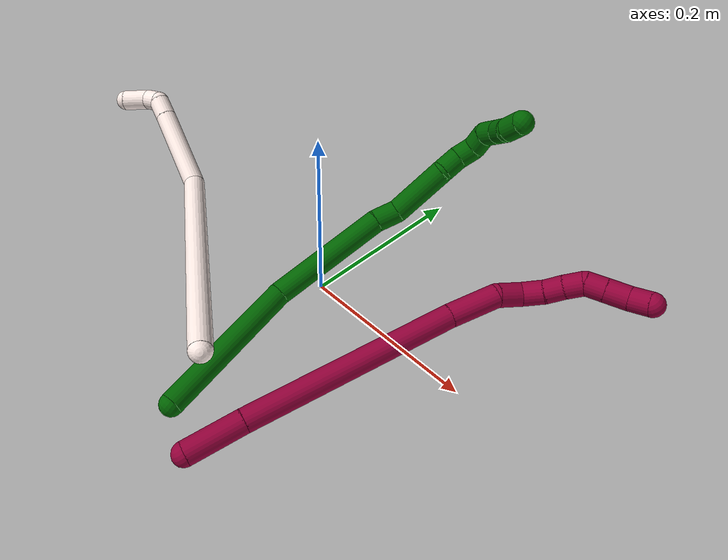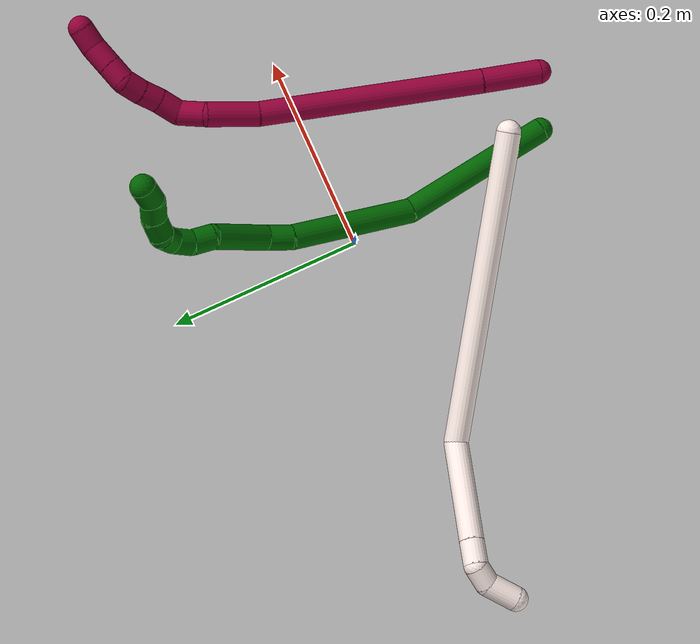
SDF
<sdf version="1.7">
 <world name="default">
  <model name="6">
   <static>0</static>
   <link name="6">
    <collision name="collision-cylinder-e_1_1_4">
     <pose>0.01271 0.038841 0.068068 -0.518536 0.160773 -0.042729</pose>
     <geometry><cylinder><radius>0.0125</radius><length>0.158789</length></cylinder></geometry>
     <surface>
      <friction><ode><mu>1.16</mu><mu2>1.16</mu2><slip1>0</slip1><slip2>0</slip2></ode></friction>
      <contact><ode><kp>1e+06</kp><kd>1</kd><max_vel>0</max_vel><min_depth>0.001</min_depth></ode></contact>
     </surface>
    </collision>
    <visual name="visual-cylinder-e_1_1_4">
     <pose>0.01271 0.038841 0.068068 -0.518536 0.160773 -0.042729</pose>
     <geometry><cylinder><radius>0.0125</radius><length>0.158789</length></cylinder></geometry>
     <material><ambient>0 0.392157 0.003922 1</ambient></material>
    </visual>
    <collision name="collision-cylinder-e_2_4_5">
     <pose>0.042735 0.088043 0.19715 -0.168206 0.272822 -0.023142</pose>
     <geometry><cylinder><radius>0.0125</radius><length>0.128527</length></cylinder></geometry>
     <surface>
      <friction><ode><mu>1.16</mu><mu2>1.16</mu2><slip1>0</slip1><slip2>0</slip2></ode></friction>
      <contact><ode><kp>1e+06</kp><kd>1</kd><max_vel>0</max_vel><min_depth>0.001</min_depth></ode></contact>
     </surface>
    </collision>
    <visual name="visual-cylinder-e_2_4_5">
     <pose>0.042735 0.088043 0.19715 -0.168206 0.272822 -0.023142</pose>
     <geometry><cylinder><radius>0.0125</radius><length>0.128527</length></cylinder></geometry>
     <material><ambient>0 0.392157 0.003922 1</ambient></material>
    </visual>
    <collision name="collision-cylinder-e_3_5_6">
     <pose>0.065923 0.099084 0.269718 -0.058797 0.469496 -0.014066</pose>
     <geometry><cylinder><radius>0.0125</radius><length>0.025959</length></cylinder></geometry>
     <surface>
      <friction><ode><mu>1.16</mu><mu2>1.16</mu2><slip1>0</slip1><slip2>0</slip2></ode></friction>
      <contact><ode><kp>1e+06</kp><kd>1</kd><max_vel>0</max_vel><min_depth>0.001</min_depth></ode></contact>
     </surface>
    </collision>
    <visual name="visual-cylinder-e_3_5_6">
     <pose>0.065923 0.099084 0.269718 -0.058797 0.469496 -0.014066</pose>
     <geometry><cylinder><radius>0.0125</radius><length>0.025959</length></cylinder></geometry>
     <material><ambient>0 0.392157 0.003922 1</ambient></material>
    </visual>
    <collision name="collision-cylinder-e_4_6_7">
     <pose>0.075745 0.093297 0.312313 0.205409 0.12391 0.012787</pose>
     <geometry><cylinder><radius>0.0125</radius><length>0.063902</length></cylinder></geometry>
     <surface>
      <friction><ode><mu>1.16</mu><mu2>1.16</mu2><slip1>0</slip1><slip2>0</slip2></ode></friction>
      <contact><ode><kp>1e+06</kp><kd>1</kd><max_vel>0</max_vel><min_depth>0.001</min_depth></ode></contact>
     </surface>
    </collision>
    <visual name="visual-cylinder-e_4_6_7">
     <pose>0.075745 0.093297 0.312313 0.205409 0.12391 0.012787</pose>
     <geometry><cylinder><radius>0.0125</radius><length>0.063902</length></cylinder></geometry>
     <material><ambient>0 0.392157 0.003922 1</ambient></material>
    </visual>
    <collision name="collision-cylinder-e_5_7_8">
     <pose>0.082041 0.088856 0.354168 -0.185209 0.210146 -0.019588</pose>
     <geometry><cylinder><radius>0.0125</radius><length>0.022502</length></cylinder></geometry>
     <surface>
      <friction><ode><mu>1.16</mu><mu2>1.16</mu2><slip1>0</slip1><slip2>0</slip2></ode></friction>
      <contact><ode><kp>1e+06</kp><kd>1</kd><max_vel>0</max_vel><min_depth>0.001</min_depth></ode></contact>
     </surface>
    </collision>
    <visual name="visual-cylinder-e_5_7_8">
     <pose>0.082041 0.088856 0.354168 -0.185209 0.210146 -0.019588</pose>
     <geometry><cylinder><radius>0.0125</radius><length>0.022502</length></cylinder></geometry>
     <material><ambient>0 0.392157 0.003922 1</ambient></material>
    </visual>
    <collision name="collision-cylinder-e_6_8_9">
     <pose>0.087354 0.089012 0.374412 0.195863 0.299372 0.029632</pose>
     <geometry><cylinder><radius>0.0125</radius><length>0.020119</length></cylinder></geometry>
     <surface>
      <friction><ode><mu>1.16</mu><mu2>1.16</mu2><slip1>0</slip1><slip2>0</slip2></ode></friction>
      <contact><ode><kp>1e+06</kp><kd>1</kd><max_vel>0</max_vel><min_depth>0.001</min_depth></ode></contact>
     </surface>
    </collision>
    <visual name="visual-cylinder-e_6_8_9">
     <pose>0.087354 0.089012 0.374412 0.195863 0.299372 0.029632</pose>
     <geometry><cylinder><radius>0.0125</radius><length>0.020119</length></cylinder></geometry>
     <material><ambient>0 0.392157 0.003922 1</ambient></material>
    </visual>
    <collision name="collision-cylinder-e_7_9_10">
     <pose>0.088882 0.081432 0.391967 0.612449 -0.143872 -0.045559</pose>
     <geometry><cylinder><radius>0.0125</radius><length>0.02007</length></cylinder></geometry>
     <surface>
      <friction><ode><mu>1.16</mu><mu2>1.16</mu2><slip1>0</slip1><slip2>0</slip2></ode></friction>
      <contact><ode><kp>1e+06</kp><kd>1</kd><max_vel>0</max_vel><min_depth>0.001</min_depth></ode></contact>
     </surface>
    </collision>
    <visual name="visual-cylinder-e_7_9_10">
     <pose>0.088882 0.081432 0.391967 0.612449 -0.143872 -0.045559</pose>
     <geometry><cylinder><radius>0.0125</radius><length>0.02007</length></cylinder></geometry>
     <material><ambient>0 0.392157 0.003922 1</ambient></material>
    </visual>
    <collision name="collision-cylinder-e_8_10_11">
     <pose>0.090187 0.066964 0.40411 1.14079 0.277417 0.178644</pose>
     <geometry><cylinder><radius>0.0125</radius><length>0.020037</length></cylinder></geometry>
     <surface>
      <friction><ode><mu>1.16</mu><mu2>1.16</mu2><slip1>0</slip1><slip2>0</slip2></ode></friction>
      <contact><ode><kp>1e+06</kp><kd>1</kd><max_vel>0</max_vel><min_depth>0.001</min_depth></ode></contact>
     </surface>
    </collision>
    <visual name="visual-cylinder-e_8_10_11">
     <pose>0.090187 0.066964 0.40411 1.14079 0.277417 0.178644</pose>
     <geometry><cylinder><radius>0.0125</radius><length>0.020037</length></cylinder></geometry>
     <material><ambient>0 0.392157 0.003922 1</ambient></material>
    </visual>
    <collision name="collision-cylinder-e_9_11_12">
     <pose>0.093608 0.048386 0.410093 1.37315 0.067454 0.055292</pose>
     <geometry><cylinder><radius>0.0125</radius><length>0.020076</length></cylinder></geometry>
     <surface>
      <friction><ode><mu>1.16</mu><mu2>1.16</mu2><slip1>0</slip1><slip2>0</slip2></ode></friction>
      <contact><ode><kp>1e+06</kp><kd>1</kd><max_vel>0</max_vel><min_depth>0.001</min_depth></ode></contact>
     </surface>
    </collision>
    <visual name="visual-cylinder-e_9_11_12">
     <pose>0.093608 0.048386 0.410093 1.37315 0.067454 0.055292</pose>
     <geometry><cylinder><radius>0.0125</radius><length>0.020076</length></cylinder></geometry>
     <material><ambient>0 0.392157 0.003922 1</ambient></material>
    </visual>
    <collision name="collision-cylinder-e_10_12_2">
     <pose>0.095757 0.030458 0.417742 0.95953 0.147677 0.07694</pose>
     <geometry><cylinder><radius>0.0125</radius><length>0.020018</length></cylinder></geometry>
     <surface>
      <friction><ode><mu>1.16</mu><mu2>1.16</mu2><slip1>0</slip1><slip2>0</slip2></ode></friction>
      <contact><ode><kp>1e+06</kp><kd>1</kd><max_vel>0</max_vel><min_depth>0.001</min_depth></ode></contact>
     </surface>
    </collision>
    <visual name="visual-cylinder-e_10_12_2">
     <pose>0.095757 0.030458 0.417742 0.95953 0.147677 0.07694</pose>
     <geometry><cylinder><radius>0.0125</radius><length>0.020018</length></cylinder></geometry>
     <material><ambient>0 0.392157 0.003922 1</ambient></material>
    </visual>
    <collision name="collision-sphere-2">
     <pose>0.09723 0.022351 0.423423 0 -0 0</pose>
     <geometry><sphere><radius>0.0125</radius></sphere></geometry>
     <surface>
      <friction><ode><mu>1.16</mu><mu2>1.16</mu2><slip1>0</slip1><slip2>0</slip2></ode></friction>
      <contact><ode><kp>1e+06</kp><kd>1</kd><max_vel>0</max_vel><min_depth>0.001</min_depth></ode></contact>
     </surface>
    </collision>
    <visual name="visual-sphere-2">
     <pose>0.09723 0.022351 0.423423 0 -0 0</pose>
     <geometry><sphere><radius>0.0125</radius></sphere></geometry>
     <material><ambient>0 0.392157 0.003922 1</ambient></material>
    </visual>
    <collision name="collision-sphere-12">
     <pose>0.094284 0.038566 0.41206 0 -0 0</pose>
     <geometry><sphere><radius>0.0125</radius></sphere></geometry>
     <surface>
      <friction><ode><mu>1.16</mu><mu2>1.16</mu2><slip1>0</slip1><slip2>0</slip2></ode></friction>
      <contact><ode><kp>1e+06</kp><kd>1</kd><max_vel>0</max_vel><min_depth>0.001</min_depth></ode></contact>
     </surface>
    </collision>
    <visual name="visual-sphere-12">
     <pose>0.094284 0.038566 0.41206 0 -0 0</pose>
     <geometry><sphere><radius>0.0125</radius></sphere></geometry>
     <material><ambient>0 0.392157 0.003922 1</ambient></material>
    </visual>
    <collision name="collision-sphere-11">
     <pose>0.092931 0.058206 0.408127 0 -0 0</pose>
     <geometry><sphere><radius>0.0125</radius></sphere></geometry>
     <surface>
      <friction><ode><mu>1.16</mu><mu2>1.16</mu2><slip1>0</slip1><slip2>0</slip2></ode></friction>
      <contact><ode><kp>1e+06</kp><kd>1</kd><max_vel>0</max_vel><min_depth>0.001</min_depth></ode></contact>
     </surface>
    </collision>
    <visual name="visual-sphere-11">
     <pose>0.092931 0.058206 0.408127 0 -0 0</pose>
     <geometry><sphere><radius>0.0125</radius></sphere></geometry>
     <material><ambient>0 0.392157 0.003922 1</ambient></material>
    </visual>
    <collision name="collision-sphere-10">
     <pose>0.087444 0.075723 0.400093 0 -0 0</pose>
     <geometry><sphere><radius>0.0125</radius></sphere></geometry>
     <surface>
      <friction><ode><mu>1.16</mu><mu2>1.16</mu2><slip1>0</slip1><slip2>0</slip2></ode></friction>
      <contact><ode><kp>1e+06</kp><kd>1</kd><max_vel>0</max_vel><min_depth>0.001</min_depth></ode></contact>
     </surface>
    </collision>
    <visual name="visual-sphere-10">
     <pose>0.087444 0.075723 0.400093 0 -0 0</pose>
     <geometry><sphere><radius>0.0125</radius></sphere></geometry>
     <material><ambient>0 0.392157 0.003922 1</ambient></material>
    </visual>
    <collision name="collision-sphere-9">
     <pose>0.090321 0.087141 0.38384 0 -0 0</pose>
     <geometry><sphere><radius>0.0125</radius></sphere></geometry>
     <surface>
      <friction><ode><mu>1.16</mu><mu2>1.16</mu2><slip1>0</slip1><slip2>0</slip2></ode></friction>
      <contact><ode><kp>1e+06</kp><kd>1</kd><max_vel>0</max_vel><min_depth>0.001</min_depth></ode></contact>
     </surface>
    </collision>
    <visual name="visual-sphere-9">
     <pose>0.090321 0.087141 0.38384 0 -0 0</pose>
     <geometry><sphere><radius>0.0125</radius></sphere></geometry>
     <material><ambient>0 0.392157 0.003922 1</ambient></material>
    </visual>
    <collision name="collision-sphere-4">
     <pose>0.025419 0.077682 0.136137 0 -0 0</pose>
     <geometry><sphere><radius>0.0125</radius></sphere></geometry>
     <surface>
      <friction><ode><mu>1.16</mu><mu2>1.16</mu2><slip1>0</slip1><slip2>0</slip2></ode></friction>
      <contact><ode><kp>1e+06</kp><kd>1</kd><max_vel>0</max_vel><min_depth>0.001</min_depth></ode></contact>
     </surface>
    </collision>
    <visual name="visual-sphere-4">
     <pose>0.025419 0.077682 0.136137 0 -0 0</pose>
     <geometry><sphere><radius>0.0125</radius></sphere></geometry>
     <material><ambient>0 0.392157 0.003922 1</ambient></material>
    </visual>
    <collision name="collision-sphere-1">
     <geometry><sphere><radius>0.0125</radius></sphere></geometry>
     <surface>
      <friction><ode><mu>1.16</mu><mu2>1.16</mu2><slip1>0</slip1><slip2>0</slip2></ode></friction>
      <contact><ode><kp>1e+06</kp><kd>1</kd><max_vel>0</max_vel><min_depth>0.001</min_depth></ode></contact>
     </surface>
    </collision>
    <visual name="visual-sphere-1">
     <geometry><sphere><radius>0.0125</radius></sphere></geometry>
     <material><ambient>0 0.392157 0.003922 1</ambient></material>
    </visual>
    <collision name="collision-sphere-8">
     <pose>0.084388 0.090883 0.364983 0 -0 0</pose>
     <geometry><sphere><radius>0.0125</radius></sphere></geometry>
     <surface>
      <friction><ode><mu>1.16</mu><mu2>1.16</mu2><slip1>0</slip1><slip2>0</slip2></ode></friction>
      <contact><ode><kp>1e+06</kp><kd>1</kd><max_vel>0</max_vel><min_depth>0.001</min_depth></ode></contact>
     </surface>
    </collision>
    <visual name="visual-sphere-8">
     <pose>0.084388 0.090883 0.364983 0 -0 0</pose>
     <geometry><sphere><radius>0.0125</radius></sphere></geometry>
     <material><ambient>0 0.392157 0.003922 1</ambient></material>
    </visual>
    <collision name="collision-sphere-5">
     <pose>0.060051 0.098404 0.258163 0 -0 0</pose>
     <geometry><sphere><radius>0.0125</radius></sphere></geometry>
     <surface>
      <friction><ode><mu>1.16</mu><mu2>1.16</mu2><slip1>0</slip1><slip2>0</slip2></ode></friction>
      <contact><ode><kp>1e+06</kp><kd>1</kd><max_vel>0</max_vel><min_depth>0.001</min_depth></ode></contact>
     </surface>
    </collision>
    <visual name="visual-sphere-5">
     <pose>0.060051 0.098404 0.258163 0 -0 0</pose>
     <geometry><sphere><radius>0.0125</radius></sphere></geometry>
     <material><ambient>0 0.392157 0.003922 1</ambient></material>
    </visual>
    <collision name="collision-sphere-6">
     <pose>0.071796 0.099764 0.281274 0 -0 0</pose>
     <geometry><sphere><radius>0.0125</radius></sphere></geometry>
     <surface>
      <friction><ode><mu>1.16</mu><mu2>1.16</mu2><slip1>0</slip1><slip2>0</slip2></ode></friction>
      <contact><ode><kp>1e+06</kp><kd>1</kd><max_vel>0</max_vel><min_depth>0.001</min_depth></ode></contact>
     </surface>
    </collision>
    <visual name="visual-sphere-6">
     <pose>0.071796 0.099764 0.281274 0 -0 0</pose>
     <geometry><sphere><radius>0.0125</radius></sphere></geometry>
     <material><ambient>0 0.392157 0.003922 1</ambient></material>
    </visual>
    <collision name="collision-sphere-7">
     <pose>0.079694 0.08683 0.343353 0 -0 0</pose>
     <geometry><sphere><radius>0.0125</radius></sphere></geometry>
     <surface>
      <friction><ode><mu>1.16</mu><mu2>1.16</mu2><slip1>0</slip1><slip2>0</slip2></ode></friction>
      <contact><ode><kp>1e+06</kp><kd>1</kd><max_vel>0</max_vel><min_depth>0.001</min_depth></ode></contact>
     </surface>
    </collision>
    <visual name="visual-sphere-7">
     <pose>0.079694 0.08683 0.343353 0 -0 0</pose>
     <geometry><sphere><radius>0.0125</radius></sphere></geometry>
     <material><ambient>0 0.392157 0.003922 1</ambient></material>
    </visual>
    <inertial>
     <pose>0.050106 0.06873 0.222337 0 -0 0</pose>
     <mass>0.5</mass>
     <inertia>
      <ixx>0.000535</ixx>
      <ixy>0</ixy>
      <ixz>0</ixz>
      <iyy>0.000492</iyy>
      <iyz>0</iyz>
      <izz>-0.000262</izz>
     </inertia>
    </inertial>
   </link>
   <pose>0.026483 -0.218641 0.011508 -0.727911 0.591852 0.451123</pose>
  </model>
  <model name="8">
   <static>0</static>
   <link name="8">
    <collision name="collision-cylinder-e_1_1_4">
     <pose>0.002517 0.029208 -0.007932 -1.83598 0.082974 -0.10847</pose>
     <geometry><cylinder><radius>0.0125</radius><length>0.060741</length></cylinder></geometry>
     <surface>
      <friction><ode><mu>1.16</mu><mu2>1.16</mu2><slip1>0</slip1><slip2>0</slip2></ode></friction>
      <contact><ode><kp>1e+06</kp><kd>1</kd><max_vel>0</max_vel><min_depth>0.001</min_depth></ode></contact>
     </surface>
    </collision>
    <visual name="visual-cylinder-e_1_1_4">
     <pose>0.002517 0.029208 -0.007932 -1.83598 0.082974 -0.10847</pose>
     <geometry><cylinder><radius>0.0125</radius><length>0.060741</length></cylinder></geometry>
     <material><ambient>0.584314 0 0.227451 1</ambient></material>
    </visual>
    <collision name="collision-cylinder-e_2_4_5">
     <pose>0.014549 0.166741 -0.049825 -1.8746 0.083621 -0.113793</pose>
     <geometry><cylinder><radius>0.0125</radius><length>0.227843</length></cylinder></geometry>
     <surface>
      <friction><ode><mu>1.16</mu><mu2>1.16</mu2><slip1>0</slip1><slip2>0</slip2></ode></friction>
      <contact><ode><kp>1e+06</kp><kd>1</kd><max_vel>0</max_vel><min_depth>0.001</min_depth></ode></contact>
     </surface>
    </collision>
    <visual name="visual-cylinder-e_2_4_5">
     <pose>0.014549 0.166741 -0.049825 -1.8746 0.083621 -0.113793</pose>
     <geometry><cylinder><radius>0.0125</radius><length>0.227843</length></cylinder></geometry>
     <material><ambient>0.584314 0 0.227451 1</ambient></material>
    </visual>
    <collision name="collision-cylinder-e_3_5_6">
     <pose>0.030225 0.29964 -0.09098 -1.85563 0.236118 -0.314032</pose>
     <geometry><cylinder><radius>0.0125</radius><length>0.052673</length></cylinder></geometry>
     <surface>
      <friction><ode><mu>1.16</mu><mu2>1.16</mu2><slip1>0</slip1><slip2>0</slip2></ode></friction>
      <contact><ode><kp>1e+06</kp><kd>1</kd><max_vel>0</max_vel><min_depth>0.001</min_depth></ode></contact>
     </surface>
    </collision>
    <visual name="visual-cylinder-e_3_5_6">
     <pose>0.030225 0.29964 -0.09098 -1.85563 0.236118 -0.314032</pose>
     <geometry><cylinder><radius>0.0125</radius><length>0.052673</length></cylinder></geometry>
     <material><ambient>0.584314 0 0.227451 1</ambient></material>
    </visual>
    <collision name="collision-cylinder-e_4_6_7">
     <pose>0.038395 0.334936 -0.107156 -2.26802 0.142624 -0.303658</pose>
     <geometry><cylinder><radius>0.0125</radius><length>0.028258</length></cylinder></geometry>
     <surface>
      <friction><ode><mu>1.16</mu><mu2>1.16</mu2><slip1>0</slip1><slip2>0</slip2></ode></friction>
      <contact><ode><kp>1e+06</kp><kd>1</kd><max_vel>0</max_vel><min_depth>0.001</min_depth></ode></contact>
     </surface>
    </collision>
    <visual name="visual-cylinder-e_4_6_7">
     <pose>0.038395 0.334936 -0.107156 -2.26802 0.142624 -0.303658</pose>
     <geometry><cylinder><radius>0.0125</radius><length>0.028258</length></cylinder></geometry>
     <material><ambient>0.584314 0 0.227451 1</ambient></material>
    </visual>
    <collision name="collision-cylinder-e_5_7_8">
     <pose>0.048957 0.353513 -0.119117 -1.9335 0.794375 -1.09236</pose>
     <geometry><cylinder><radius>0.0125</radius><length>0.02398</length></cylinder></geometry>
     <surface>
      <friction><ode><mu>1.16</mu><mu2>1.16</mu2><slip1>0</slip1><slip2>0</slip2></ode></friction>
      <contact><ode><kp>1e+06</kp><kd>1</kd><max_vel>0</max_vel><min_depth>0.001</min_depth></ode></contact>
     </surface>
    </collision>
    <visual name="visual-cylinder-e_5_7_8">
     <pose>0.048957 0.353513 -0.119117 -1.9335 0.794375 -1.09236</pose>
     <geometry><cylinder><radius>0.0125</radius><length>0.02398</length></cylinder></geometry>
     <material><ambient>0.584314 0 0.227451 1</ambient></material>
    </visual>
    <collision name="collision-cylinder-e_6_8_9">
     <pose>0.064047 0.368837 -0.123611 -1.77069 0.708999 -0.850103</pose>
     <geometry><cylinder><radius>0.0125</radius><length>0.020079</length></cylinder></geometry>
     <surface>
      <friction><ode><mu>1.16</mu><mu2>1.16</mu2><slip1>0</slip1><slip2>0</slip2></ode></friction>
      <contact><ode><kp>1e+06</kp><kd>1</kd><max_vel>0</max_vel><min_depth>0.001</min_depth></ode></contact>
     </surface>
    </collision>
    <visual name="visual-cylinder-e_6_8_9">
     <pose>0.064047 0.368837 -0.123611 -1.77069 0.708999 -0.850103</pose>
     <geometry><cylinder><radius>0.0125</radius><length>0.020079</length></cylinder></geometry>
     <material><ambient>0.584314 0 0.227451 1</ambient></material>
    </visual>
    <collision name="collision-cylinder-e_7_9_10">
     <pose>0.078087 0.38314 -0.126575 -1.77994 0.820948 -0.986021</pose>
     <geometry><cylinder><radius>0.0125</radius><length>0.020506</length></cylinder></geometry>
     <surface>
      <friction><ode><mu>1.16</mu><mu2>1.16</mu2><slip1>0</slip1><slip2>0</slip2></ode></friction>
      <contact><ode><kp>1e+06</kp><kd>1</kd><max_vel>0</max_vel><min_depth>0.001</min_depth></ode></contact>
     </surface>
    </collision>
    <visual name="visual-cylinder-e_7_9_10">
     <pose>0.078087 0.38314 -0.126575 -1.77994 0.820948 -0.986021</pose>
     <geometry><cylinder><radius>0.0125</radius><length>0.020506</length></cylinder></geometry>
     <material><ambient>0.584314 0 0.227451 1</ambient></material>
    </visual>
    <collision name="collision-cylinder-e_8_10_11">
     <pose>0.09354 0.393237 -0.133443 -2.59974 0.898903 -2.09671</pose>
     <geometry><cylinder><radius>0.0125</radius><length>0.020316</length></cylinder></geometry>
     <surface>
      <friction><ode><mu>1.16</mu><mu2>1.16</mu2><slip1>0</slip1><slip2>0</slip2></ode></friction>
      <contact><ode><kp>1e+06</kp><kd>1</kd><max_vel>0</max_vel><min_depth>0.001</min_depth></ode></contact>
     </surface>
    </collision>
    <visual name="visual-cylinder-e_8_10_11">
     <pose>0.09354 0.393237 -0.133443 -2.59974 0.898903 -2.09671</pose>
     <geometry><cylinder><radius>0.0125</radius><length>0.020316</length></cylinder></geometry>
     <material><ambient>0.584314 0 0.227451 1</ambient></material>
    </visual>
    <collision name="collision-cylinder-e_9_11_12">
     <pose>0.110888 0.400347 -0.145311 -2.60361 0.896445 -2.10051</pose>
     <geometry><cylinder><radius>0.0125</radius><length>0.024063</length></cylinder></geometry>
     <surface>
      <friction><ode><mu>1.16</mu><mu2>1.16</mu2><slip1>0</slip1><slip2>0</slip2></ode></friction>
      <contact><ode><kp>1e+06</kp><kd>1</kd><max_vel>0</max_vel><min_depth>0.001</min_depth></ode></contact>
     </surface>
    </collision>
    <visual name="visual-cylinder-e_9_11_12">
     <pose>0.110888 0.400347 -0.145311 -2.60361 0.896445 -2.10051</pose>
     <geometry><cylinder><radius>0.0125</radius><length>0.024063</length></cylinder></geometry>
     <material><ambient>0.584314 0 0.227451 1</ambient></material>
    </visual>
    <collision name="collision-cylinder-e_10_12_2">
     <pose>0.130108 0.407075 -0.155116 -2.43232 1.14803 -2.10149</pose>
     <geometry><cylinder><radius>0.0125</radius><length>0.02154</length></cylinder></geometry>
     <surface>
      <friction><ode><mu>1.16</mu><mu2>1.16</mu2><slip1>0</slip1><slip2>0</slip2></ode></friction>
      <contact><ode><kp>1e+06</kp><kd>1</kd><max_vel>0</max_vel><min_depth>0.001</min_depth></ode></contact>
     </surface>
    </collision>
    <visual name="visual-cylinder-e_10_12_2">
     <pose>0.130108 0.407075 -0.155116 -2.43232 1.14803 -2.10149</pose>
     <geometry><cylinder><radius>0.0125</radius><length>0.02154</length></cylinder></geometry>
     <material><ambient>0.584314 0 0.227451 1</ambient></material>
    </visual>
    <collision name="collision-sphere-2">
     <pose>0.13993 0.409952 -0.158469 0 -0 0</pose>
     <geometry><sphere><radius>0.0125</radius></sphere></geometry>
     <surface>
      <friction><ode><mu>1.16</mu><mu2>1.16</mu2><slip1>0</slip1><slip2>0</slip2></ode></friction>
      <contact><ode><kp>1e+06</kp><kd>1</kd><max_vel>0</max_vel><min_depth>0.001</min_depth></ode></contact>
     </surface>
    </collision>
    <visual name="visual-sphere-2">
     <pose>0.13993 0.409952 -0.158469 0 -0 0</pose>
     <geometry><sphere><radius>0.0125</radius></sphere></geometry>
     <material><ambient>0.584314 0 0.227451 1</ambient></material>
    </visual>
    <collision name="collision-sphere-12">
     <pose>0.120286 0.404197 -0.151762 0 -0 0</pose>
     <geometry><sphere><radius>0.0125</radius></sphere></geometry>
     <surface>
      <friction><ode><mu>1.16</mu><mu2>1.16</mu2><slip1>0</slip1><slip2>0</slip2></ode></friction>
      <contact><ode><kp>1e+06</kp><kd>1</kd><max_vel>0</max_vel><min_depth>0.001</min_depth></ode></contact>
     </surface>
    </collision>
    <visual name="visual-sphere-12">
     <pose>0.120286 0.404197 -0.151762 0 -0 0</pose>
     <geometry><sphere><radius>0.0125</radius></sphere></geometry>
     <material><ambient>0.584314 0 0.227451 1</ambient></material>
    </visual>
    <collision name="collision-sphere-11">
     <pose>0.10149 0.396498 -0.13886 0 -0 0</pose>
     <geometry><sphere><radius>0.0125</radius></sphere></geometry>
     <surface>
      <friction><ode><mu>1.16</mu><mu2>1.16</mu2><slip1>0</slip1><slip2>0</slip2></ode></friction>
      <contact><ode><kp>1e+06</kp><kd>1</kd><max_vel>0</max_vel><min_depth>0.001</min_depth></ode></contact>
     </surface>
    </collision>
    <visual name="visual-sphere-11">
     <pose>0.10149 0.396498 -0.13886 0 -0 0</pose>
     <geometry><sphere><radius>0.0125</radius></sphere></geometry>
     <material><ambient>0.584314 0 0.227451 1</ambient></material>
    </visual>
    <collision name="collision-sphere-10">
     <pose>0.08559 0.389976 -0.128025 0 -0 0</pose>
     <geometry><sphere><radius>0.0125</radius></sphere></geometry>
     <surface>
      <friction><ode><mu>1.16</mu><mu2>1.16</mu2><slip1>0</slip1><slip2>0</slip2></ode></friction>
      <contact><ode><kp>1e+06</kp><kd>1</kd><max_vel>0</max_vel><min_depth>0.001</min_depth></ode></contact>
     </surface>
    </collision>
    <visual name="visual-sphere-10">
     <pose>0.08559 0.389976 -0.128025 0 -0 0</pose>
     <geometry><sphere><radius>0.0125</radius></sphere></geometry>
     <material><ambient>0.584314 0 0.227451 1</ambient></material>
    </visual>
    <collision name="collision-sphere-9">
     <pose>0.070584 0.376305 -0.125124 0 -0 0</pose>
     <geometry><sphere><radius>0.0125</radius></sphere></geometry>
     <surface>
      <friction><ode><mu>1.16</mu><mu2>1.16</mu2><slip1>0</slip1><slip2>0</slip2></ode></friction>
      <contact><ode><kp>1e+06</kp><kd>1</kd><max_vel>0</max_vel><min_depth>0.001</min_depth></ode></contact>
     </surface>
    </collision>
    <visual name="visual-sphere-9">
     <pose>0.070584 0.376305 -0.125124 0 -0 0</pose>
     <geometry><sphere><radius>0.0125</radius></sphere></geometry>
     <material><ambient>0.584314 0 0.227451 1</ambient></material>
    </visual>
    <collision name="collision-sphere-4">
     <pose>0.005034 0.058416 -0.015865 0 -0 0</pose>
     <geometry><sphere><radius>0.0125</radius></sphere></geometry>
     <surface>
      <friction><ode><mu>1.16</mu><mu2>1.16</mu2><slip1>0</slip1><slip2>0</slip2></ode></friction>
      <contact><ode><kp>1e+06</kp><kd>1</kd><max_vel>0</max_vel><min_depth>0.001</min_depth></ode></contact>
     </surface>
    </collision>
    <visual name="visual-sphere-4">
     <pose>0.005034 0.058416 -0.015865 0 -0 0</pose>
     <geometry><sphere><radius>0.0125</radius></sphere></geometry>
     <material><ambient>0.584314 0 0.227451 1</ambient></material>
    </visual>
    <collision name="collision-sphere-1">
     <geometry><sphere><radius>0.0125</radius></sphere></geometry>
     <surface>
      <friction><ode><mu>1.16</mu><mu2>1.16</mu2><slip1>0</slip1><slip2>0</slip2></ode></friction>
      <contact><ode><kp>1e+06</kp><kd>1</kd><max_vel>0</max_vel><min_depth>0.001</min_depth></ode></contact>
     </surface>
    </collision>
    <visual name="visual-sphere-1">
     <geometry><sphere><radius>0.0125</radius></sphere></geometry>
     <material><ambient>0.584314 0 0.227451 1</ambient></material>
    </visual>
    <collision name="collision-sphere-8">
     <pose>0.057511 0.361368 -0.122097 0 -0 0</pose>
     <geometry><sphere><radius>0.0125</radius></sphere></geometry>
     <surface>
      <friction><ode><mu>1.16</mu><mu2>1.16</mu2><slip1>0</slip1><slip2>0</slip2></ode></friction>
      <contact><ode><kp>1e+06</kp><kd>1</kd><max_vel>0</max_vel><min_depth>0.001</min_depth></ode></contact>
     </surface>
    </collision>
    <visual name="visual-sphere-8">
     <pose>0.057511 0.361368 -0.122097 0 -0 0</pose>
     <geometry><sphere><radius>0.0125</radius></sphere></geometry>
     <material><ambient>0.584314 0 0.227451 1</ambient></material>
    </visual>
    <collision name="collision-sphere-5">
     <pose>0.024064 0.275066 -0.083785 0 -0 0</pose>
     <geometry><sphere><radius>0.0125</radius></sphere></geometry>
     <surface>
      <friction><ode><mu>1.16</mu><mu2>1.16</mu2><slip1>0</slip1><slip2>0</slip2></ode></friction>
      <contact><ode><kp>1e+06</kp><kd>1</kd><max_vel>0</max_vel><min_depth>0.001</min_depth></ode></contact>
     </surface>
    </collision>
    <visual name="visual-sphere-5">
     <pose>0.024064 0.275066 -0.083785 0 -0 0</pose>
     <geometry><sphere><radius>0.0125</radius></sphere></geometry>
     <material><ambient>0.584314 0 0.227451 1</ambient></material>
    </visual>
    <collision name="collision-sphere-6">
     <pose>0.036386 0.324214 -0.098176 0 -0 0</pose>
     <geometry><sphere><radius>0.0125</radius></sphere></geometry>
     <surface>
      <friction><ode><mu>1.16</mu><mu2>1.16</mu2><slip1>0</slip1><slip2>0</slip2></ode></friction>
      <contact><ode><kp>1e+06</kp><kd>1</kd><max_vel>0</max_vel><min_depth>0.001</min_depth></ode></contact>
     </surface>
    </collision>
    <visual name="visual-sphere-6">
     <pose>0.036386 0.324214 -0.098176 0 -0 0</pose>
     <geometry><sphere><radius>0.0125</radius></sphere></geometry>
     <material><ambient>0.584314 0 0.227451 1</ambient></material>
    </visual>
    <collision name="collision-sphere-7">
     <pose>0.040403 0.345658 -0.116136 0 -0 0</pose>
     <geometry><sphere><radius>0.0125</radius></sphere></geometry>
     <surface>
      <friction><ode><mu>1.16</mu><mu2>1.16</mu2><slip1>0</slip1><slip2>0</slip2></ode></friction>
      <contact><ode><kp>1e+06</kp><kd>1</kd><max_vel>0</max_vel><min_depth>0.001</min_depth></ode></contact>
     </surface>
    </collision>
    <visual name="visual-sphere-7">
     <pose>0.040403 0.345658 -0.116136 0 -0 0</pose>
     <geometry><sphere><radius>0.0125</radius></sphere></geometry>
     <material><ambient>0.584314 0 0.227451 1</ambient></material>
    </visual>
    <inertial>
     <pose>0.035155 0.230287 -0.074274 0 -0 0</pose>
     <mass>0.5</mass>
     <inertia>
      <ixx>0.000907</ixx>
      <ixy>0</ixy>
      <ixz>0</ixz>
      <iyy>-0.000383</iyy>
      <iyz>0</iyz>
      <izz>-0.001095</izz>
     </inertia>
    </inertial>
   </link>
   <pose>0.080831 -0.241846 0.012209 0.402329 -0.472319 -0.236434</pose>
  </model>
  <model name="11">
   <static>0</static>
   <link name="11">
    <collision name="collision-cylinder-e_1_1_4">
     <pose>-0.065555 0.056766 -0.131844 -2.73503 -0.428401 1.62464</pose>
     <geometry><cylinder><radius>0.0125</radius><length>0.315612</length></cylinder></geometry>
     <surface>
      <friction><ode><mu>1.16</mu><mu2>1.16</mu2><slip1>0</slip1><slip2>0</slip2></ode></friction>
      <contact><ode><kp>1e+06</kp><kd>1</kd><max_vel>0</max_vel><min_depth>0.001</min_depth></ode></contact>
     </surface>
    </collision>
    <visual name="visual-cylinder-e_1_1_4">
     <pose>-0.065555 0.056766 -0.131844 -2.73503 -0.428401 1.62464</pose>
     <geometry><cylinder><radius>0.0125</radius><length>0.315612</length></cylinder></geometry>
     <material><ambient>1 0.933333 0.909804 1</ambient></material>
    </visual>
    <collision name="collision-cylinder-e_2_4_5">
     <pose>-0.174065 0.135389 -0.28318 -2.29902 -0.972383 1.73506</pose>
     <geometry><cylinder><radius>0.0125</radius><length>0.103976</length></cylinder></geometry>
     <surface>
      <friction><ode><mu>1.16</mu><mu2>1.16</mu2><slip1>0</slip1><slip2>0</slip2></ode></friction>
      <contact><ode><kp>1e+06</kp><kd>1</kd><max_vel>0</max_vel><min_depth>0.001</min_depth></ode></contact>
     </surface>
    </collision>
    <visual name="visual-cylinder-e_2_4_5">
     <pose>-0.174065 0.135389 -0.28318 -2.29902 -0.972383 1.73506</pose>
     <geometry><cylinder><radius>0.0125</radius><length>0.103976</length></cylinder></geometry>
     <material><ambient>1 0.933333 0.909804 1</ambient></material>
    </visual>
    <collision name="collision-cylinder-e_3_5_6">
     <pose>-0.2276 0.16236 -0.307568 -2.33459 -0.98118 1.793</pose>
     <geometry><cylinder><radius>0.0125</radius><length>0.02546</length></cylinder></geometry>
     <surface>
      <friction><ode><mu>1.16</mu><mu2>1.16</mu2><slip1>0</slip1><slip2>0</slip2></ode></friction>
      <contact><ode><kp>1e+06</kp><kd>1</kd><max_vel>0</max_vel><min_depth>0.001</min_depth></ode></contact>
     </surface>
    </collision>
    <visual name="visual-cylinder-e_3_5_6">
     <pose>-0.2276 0.16236 -0.307568 -2.33459 -0.98118 1.793</pose>
     <geometry><cylinder><radius>0.0125</radius><length>0.02546</length></cylinder></geometry>
     <material><ambient>1 0.933333 0.909804 1</ambient></material>
    </visual>
    <collision name="collision-cylinder-e_4_6_7">
     <pose>-0.245765 0.164497 -0.320082 2.76928 -0.747758 -2.24649</pose>
     <geometry><cylinder><radius>0.0125</radius><length>0.022307</length></cylinder></geometry>
     <surface>
      <friction><ode><mu>1.16</mu><mu2>1.16</mu2><slip1>0</slip1><slip2>0</slip2></ode></friction>
      <contact><ode><kp>1e+06</kp><kd>1</kd><max_vel>0</max_vel><min_depth>0.001</min_depth></ode></contact>
     </surface>
    </collision>
    <visual name="visual-cylinder-e_4_6_7">
     <pose>-0.245765 0.164497 -0.320082 2.76928 -0.747758 -2.24649</pose>
     <geometry><cylinder><radius>0.0125</radius><length>0.022307</length></cylinder></geometry>
     <material><ambient>1 0.933333 0.909804 1</ambient></material>
    </visual>
    <collision name="collision-cylinder-e_5_7_2">
     <pose>-0.265511 0.151798 -0.332592 2.03695 -0.840679 -1.25495</pose>
     <geometry><cylinder><radius>0.0125</radius><length>0.032644</length></cylinder></geometry>
     <surface>
      <friction><ode><mu>1.16</mu><mu2>1.16</mu2><slip1>0</slip1><slip2>0</slip2></ode></friction>
      <contact><ode><kp>1e+06</kp><kd>1</kd><max_vel>0</max_vel><min_depth>0.001</min_depth></ode></contact>
     </surface>
    </collision>
    <visual name="visual-cylinder-e_5_7_2">
     <pose>-0.265511 0.151798 -0.332592 2.03695 -0.840679 -1.25495</pose>
     <geometry><cylinder><radius>0.0125</radius><length>0.032644</length></cylinder></geometry>
     <material><ambient>1 0.933333 0.909804 1</ambient></material>
    </visual>
    <collision name="collision-sphere-2">
     <pose>-0.277672 0.142073 -0.337485 0 -0 0</pose>
     <geometry><sphere><radius>0.0125</radius></sphere></geometry>
     <surface>
      <friction><ode><mu>1.16</mu><mu2>1.16</mu2><slip1>0</slip1><slip2>0</slip2></ode></friction>
      <contact><ode><kp>1e+06</kp><kd>1</kd><max_vel>0</max_vel><min_depth>0.001</min_depth></ode></contact>
     </surface>
    </collision>
    <visual name="visual-sphere-2">
     <pose>-0.277672 0.142073 -0.337485 0 -0 0</pose>
     <geometry><sphere><radius>0.0125</radius></sphere></geometry>
     <material><ambient>1 0.933333 0.909804 1</ambient></material>
    </visual>
    <collision name="collision-sphere-7">
     <pose>-0.253349 0.161522 -0.327699 0 -0 0</pose>
     <geometry><sphere><radius>0.0125</radius></sphere></geometry>
     <surface>
      <friction><ode><mu>1.16</mu><mu2>1.16</mu2><slip1>0</slip1><slip2>0</slip2></ode></friction>
      <contact><ode><kp>1e+06</kp><kd>1</kd><max_vel>0</max_vel><min_depth>0.001</min_depth></ode></contact>
     </surface>
    </collision>
    <visual name="visual-sphere-7">
     <pose>-0.253349 0.161522 -0.327699 0 -0 0</pose>
     <geometry><sphere><radius>0.0125</radius></sphere></geometry>
     <material><ambient>1 0.933333 0.909804 1</ambient></material>
    </visual>
    <collision name="collision-sphere-6">
     <pose>-0.23818 0.167472 -0.312464 0 -0 0</pose>
     <geometry><sphere><radius>0.0125</radius></sphere></geometry>
     <surface>
      <friction><ode><mu>1.16</mu><mu2>1.16</mu2><slip1>0</slip1><slip2>0</slip2></ode></friction>
      <contact><ode><kp>1e+06</kp><kd>1</kd><max_vel>0</max_vel><min_depth>0.001</min_depth></ode></contact>
     </surface>
    </collision>
    <visual name="visual-sphere-6">
     <pose>-0.23818 0.167472 -0.312464 0 -0 0</pose>
     <geometry><sphere><radius>0.0125</radius></sphere></geometry>
     <material><ambient>1 0.933333 0.909804 1</ambient></material>
    </visual>
    <collision name="collision-sphere-5">
     <pose>-0.217019 0.157248 -0.302672 0 -0 0</pose>
     <geometry><sphere><radius>0.0125</radius></sphere></geometry>
     <surface>
      <friction><ode><mu>1.16</mu><mu2>1.16</mu2><slip1>0</slip1><slip2>0</slip2></ode></friction>
      <contact><ode><kp>1e+06</kp><kd>1</kd><max_vel>0</max_vel><min_depth>0.001</min_depth></ode></contact>
     </surface>
    </collision>
    <visual name="visual-sphere-5">
     <pose>-0.217019 0.157248 -0.302672 0 -0 0</pose>
     <geometry><sphere><radius>0.0125</radius></sphere></geometry>
     <material><ambient>1 0.933333 0.909804 1</ambient></material>
    </visual>
    <collision name="collision-sphere-1">
     <geometry><sphere><radius>0.0125</radius></sphere></geometry>
     <surface>
      <friction><ode><mu>1.16</mu><mu2>1.16</mu2><slip1>0</slip1><slip2>0</slip2></ode></friction>
      <contact><ode><kp>1e+06</kp><kd>1</kd><max_vel>0</max_vel><min_depth>0.001</min_depth></ode></contact>
     </surface>
    </collision>
    <visual name="visual-sphere-1">
     <geometry><sphere><radius>0.0125</radius></sphere></geometry>
     <material><ambient>1 0.933333 0.909804 1</ambient></material>
    </visual>
    <collision name="collision-sphere-4">
     <pose>-0.131111 0.113531 -0.263689 0 -0 0</pose>
     <geometry><sphere><radius>0.0125</radius></sphere></geometry>
     <surface>
      <friction><ode><mu>1.16</mu><mu2>1.16</mu2><slip1>0</slip1><slip2>0</slip2></ode></friction>
      <contact><ode><kp>1e+06</kp><kd>1</kd><max_vel>0</max_vel><min_depth>0.001</min_depth></ode></contact>
     </surface>
    </collision>
    <visual name="visual-sphere-4">
     <pose>-0.131111 0.113531 -0.263689 0 -0 0</pose>
     <geometry><sphere><radius>0.0125</radius></sphere></geometry>
     <material><ambient>1 0.933333 0.909804 1</ambient></material>
    </visual>
    <inertial>
     <pose>-0.117466 0.089503 -0.193768 0 -0 0</pose>
     <mass>0.5</mass>
     <inertia>
      <ixx>0.002283</ixx>
      <ixy>0</ixy>
      <ixz>0</ixz>
      <iyy>0.003091</iyy>
      <iyz>0</iyz>
      <izz>0.000168</izz>
     </inertia>
    </inertial>
   </link>
   <pose>0.034638 -0.182229 0.068838 0.693931 0.531827 0.37432</pose>
  </model>
 </world>
</sdf>
